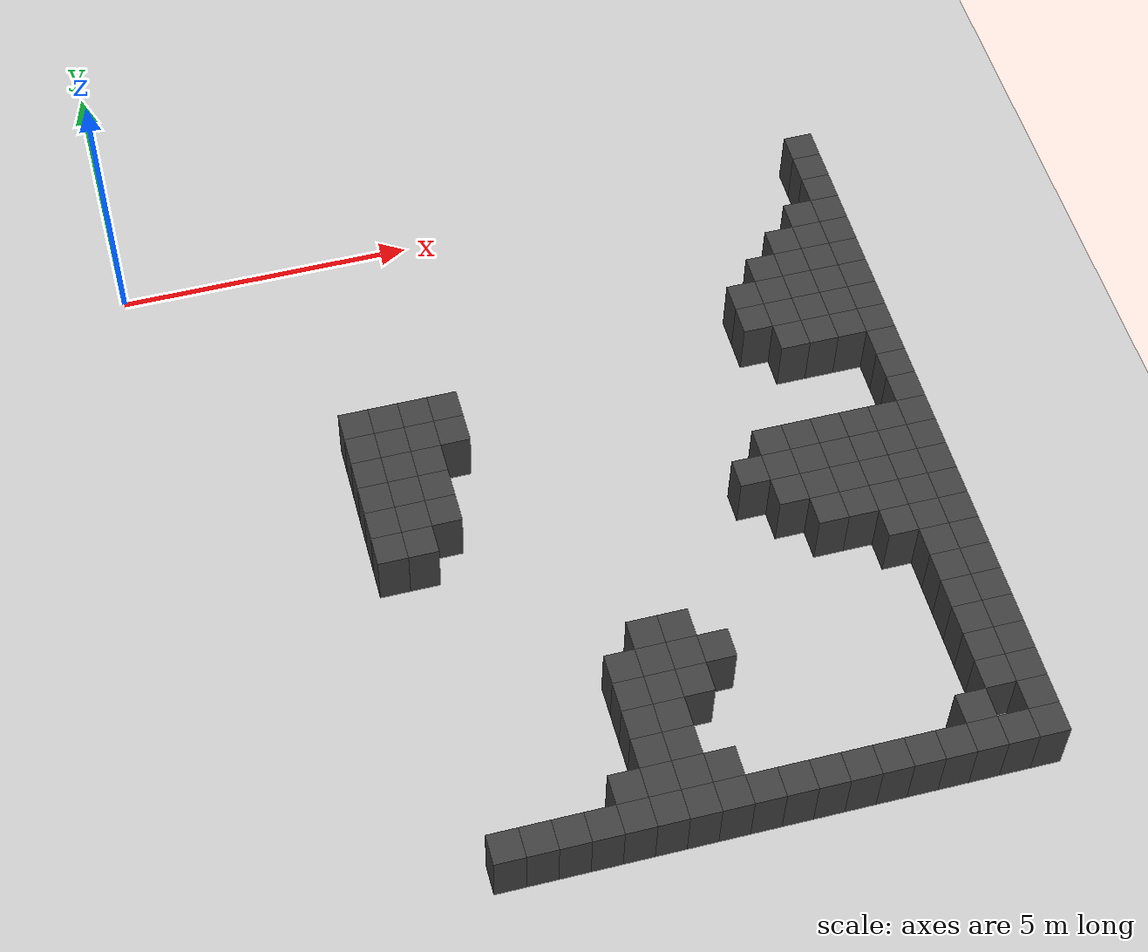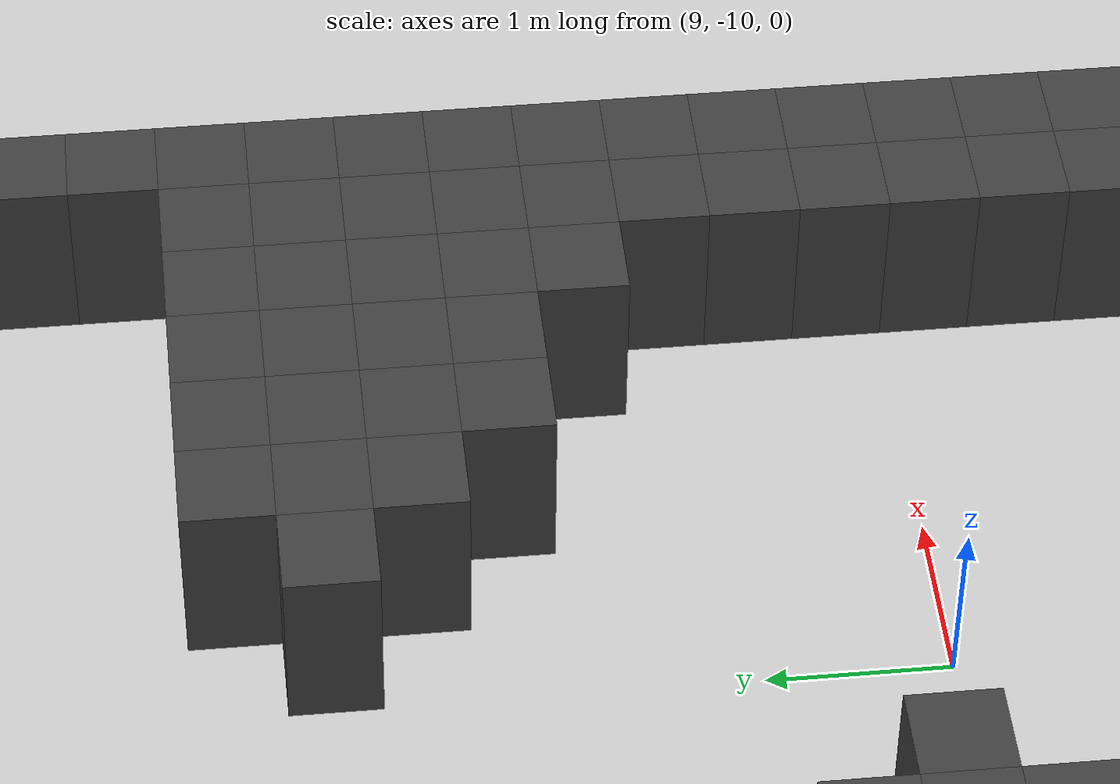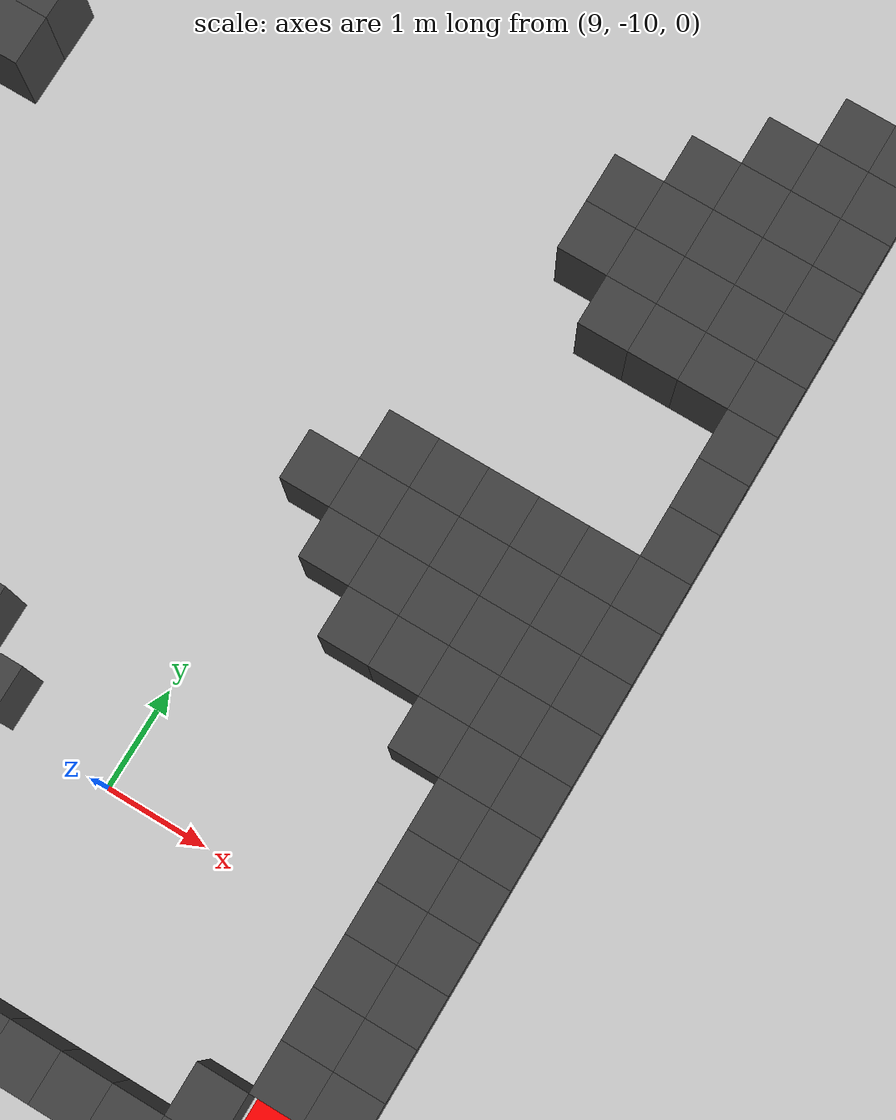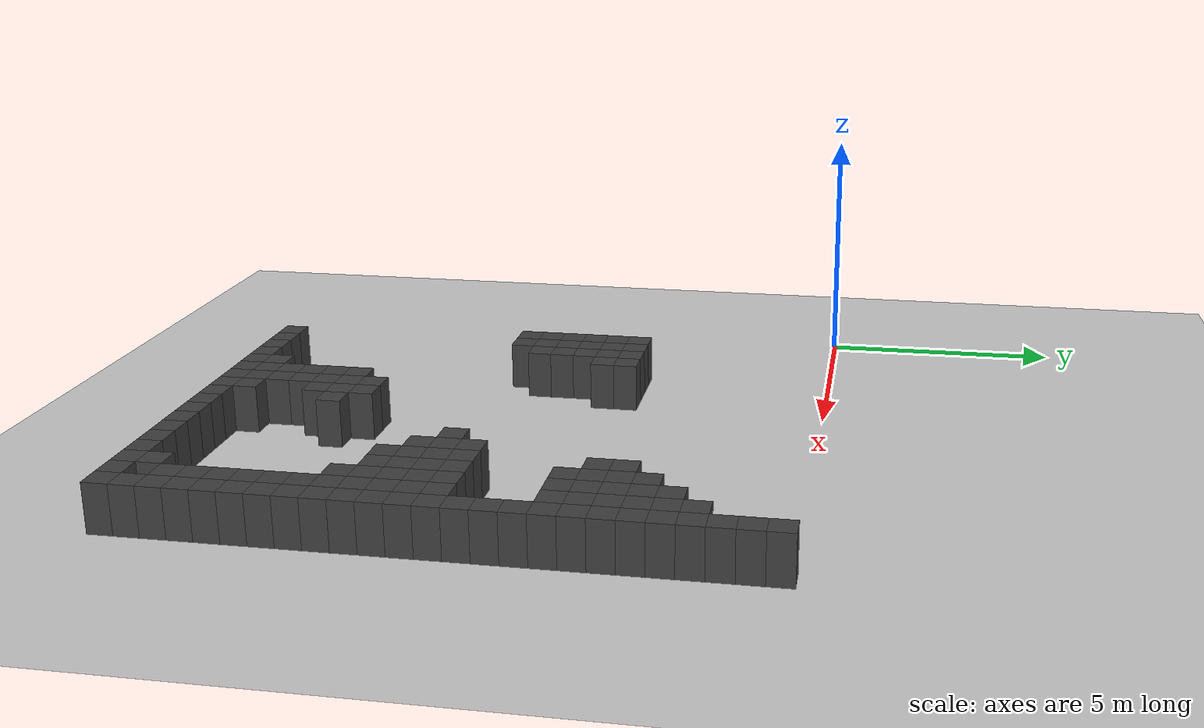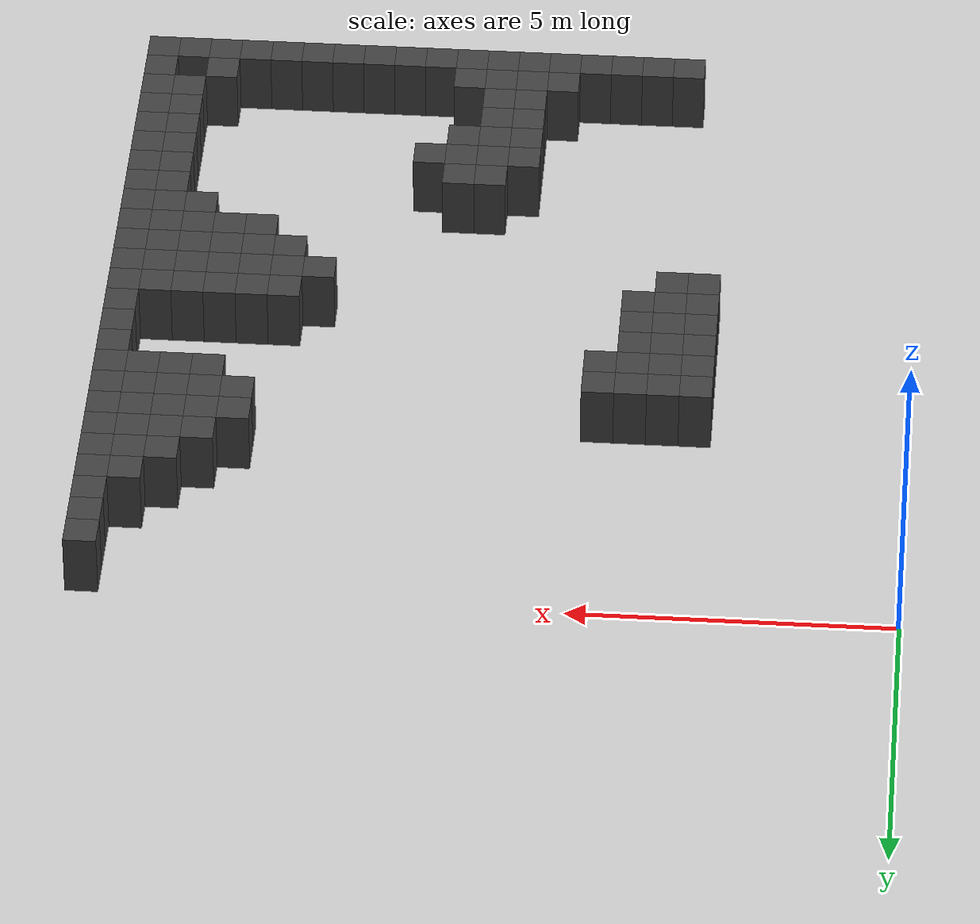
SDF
<sdf version="1.7">
 <world name="map_9082">
  <model name="ground_plane">
   <static>true</static>
   <link name="link">
    <collision name="collision">
     <geometry><plane><normal>0 0 1</normal><size>200 200</size></plane></geometry>
    </collision>
    <visual name="visual">
     <geometry><plane><normal>0 0 1</normal><size>200 200</size></plane></geometry>
     <material><ambient>0.8 0.8 0.8 1</ambient><diffuse>0.8 0.8 0.8 1</diffuse></material>
    </visual>
   </link>
  </model>
  <model name="maze_environment">
   <static>true</static>
   <link name="wall_455">
    <pose>12.250 -0.250 0.500 0 0 0</pose>
    <collision name="col"><geometry><box><size>0.5 0.5 1.0</size></box></geometry></collision>
    <visual name="vis">
     <geometry><box><size>0.5 0.5 1.0</size></box></geometry>
     <material><ambient>0.15 0.15 0.15 1</ambient><diffuse>0.25 0.25 0.25 1</diffuse></material>
    </visual>
   </link>
   <link name="wall_471">
    <pose>12.250 -0.750 0.500 0 0 0</pose>
    <collision name="col"><geometry><box><size>0.5 0.5 1.0</size></box></geometry></collision>
    <visual name="vis">
     <geometry><box><size>0.5 0.5 1.0</size></box></geometry>
     <material><ambient>0.15 0.15 0.15 1</ambient><diffuse>0.25 0.25 0.25 1</diffuse></material>
    </visual>
   </link>
   <link name="wall_489">
    <pose>12.250 -1.250 0.500 0 0 0</pose>
    <collision name="col"><geometry><box><size>0.5 0.5 1.0</size></box></geometry></collision>
    <visual name="vis">
     <geometry><box><size>0.5 0.5 1.0</size></box></geometry>
     <material><ambient>0.15 0.15 0.15 1</ambient><diffuse>0.25 0.25 0.25 1</diffuse></material>
    </visual>
   </link>
   <link name="wall_505">
    <pose>11.750 -1.750 0.500 0 0 0</pose>
    <collision name="col"><geometry><box><size>0.5 0.5 1.0</size></box></geometry></collision>
    <visual name="vis">
     <geometry><box><size>0.5 0.5 1.0</size></box></geometry>
     <material><ambient>0.15 0.15 0.15 1</ambient><diffuse>0.25 0.25 0.25 1</diffuse></material>
    </visual>
   </link>
   <link name="wall_506">
    <pose>12.250 -1.750 0.500 0 0 0</pose>
    <collision name="col"><geometry><box><size>0.5 0.5 1.0</size></box></geometry></collision>
    <visual name="vis">
     <geometry><box><size>0.5 0.5 1.0</size></box></geometry>
     <material><ambient>0.15 0.15 0.15 1</ambient><diffuse>0.25 0.25 0.25 1</diffuse></material>
    </visual>
   </link>
   <link name="wall_522">
    <pose>11.250 -2.250 0.500 0 0 0</pose>
    <collision name="col"><geometry><box><size>0.5 0.5 1.0</size></box></geometry></collision>
    <visual name="vis">
     <geometry><box><size>0.5 0.5 1.0</size></box></geometry>
     <material><ambient>0.15 0.15 0.15 1</ambient><diffuse>0.25 0.25 0.25 1</diffuse></material>
    </visual>
   </link>
   <link name="wall_523">
    <pose>11.750 -2.250 0.500 0 0 0</pose>
    <collision name="col"><geometry><box><size>0.5 0.5 1.0</size></box></geometry></collision>
    <visual name="vis">
     <geometry><box><size>0.5 0.5 1.0</size></box></geometry>
     <material><ambient>0.15 0.15 0.15 1</ambient><diffuse>0.25 0.25 0.25 1</diffuse></material>
    </visual>
   </link>
   <link name="wall_524">
    <pose>12.250 -2.250 0.500 0 0 0</pose>
    <collision name="col"><geometry><box><size>0.5 0.5 1.0</size></box></geometry></collision>
    <visual name="vis">
     <geometry><box><size>0.5 0.5 1.0</size></box></geometry>
     <material><ambient>0.15 0.15 0.15 1</ambient><diffuse>0.25 0.25 0.25 1</diffuse></material>
    </visual>
   </link>
   <link name="wall_541">
    <pose>10.750 -2.750 0.500 0 0 0</pose>
    <collision name="col"><geometry><box><size>0.5 0.5 1.0</size></box></geometry></collision>
    <visual name="vis">
     <geometry><box><size>0.5 0.5 1.0</size></box></geometry>
     <material><ambient>0.15 0.15 0.15 1</ambient><diffuse>0.25 0.25 0.25 1</diffuse></material>
    </visual>
   </link>
   <link name="wall_542">
    <pose>11.250 -2.750 0.500 0 0 0</pose>
    <collision name="col"><geometry><box><size>0.5 0.5 1.0</size></box></geometry></collision>
    <visual name="vis">
     <geometry><box><size>0.5 0.5 1.0</size></box></geometry>
     <material><ambient>0.15 0.15 0.15 1</ambient><diffuse>0.25 0.25 0.25 1</diffuse></material>
    </visual>
   </link>
   <link name="wall_543">
    <pose>11.750 -2.750 0.500 0 0 0</pose>
    <collision name="col"><geometry><box><size>0.5 0.5 1.0</size></box></geometry></collision>
    <visual name="vis">
     <geometry><box><size>0.5 0.5 1.0</size></box></geometry>
     <material><ambient>0.15 0.15 0.15 1</ambient><diffuse>0.25 0.25 0.25 1</diffuse></material>
    </visual>
   </link>
   <link name="wall_544">
    <pose>12.250 -2.750 0.500 0 0 0</pose>
    <collision name="col"><geometry><box><size>0.5 0.5 1.0</size></box></geometry></collision>
    <visual name="vis">
     <geometry><box><size>0.5 0.5 1.0</size></box></geometry>
     <material><ambient>0.15 0.15 0.15 1</ambient><diffuse>0.25 0.25 0.25 1</diffuse></material>
    </visual>
   </link>
   <link name="wall_563">
    <pose>10.250 -3.250 0.500 0 0 0</pose>
    <collision name="col"><geometry><box><size>0.5 0.5 1.0</size></box></geometry></collision>
    <visual name="vis">
     <geometry><box><size>0.5 0.5 1.0</size></box></geometry>
     <material><ambient>0.15 0.15 0.15 1</ambient><diffuse>0.25 0.25 0.25 1</diffuse></material>
    </visual>
   </link>
   <link name="wall_564">
    <pose>10.750 -3.250 0.500 0 0 0</pose>
    <collision name="col"><geometry><box><size>0.5 0.5 1.0</size></box></geometry></collision>
    <visual name="vis">
     <geometry><box><size>0.5 0.5 1.0</size></box></geometry>
     <material><ambient>0.15 0.15 0.15 1</ambient><diffuse>0.25 0.25 0.25 1</diffuse></material>
    </visual>
   </link>
   <link name="wall_565">
    <pose>11.250 -3.250 0.500 0 0 0</pose>
    <collision name="col"><geometry><box><size>0.5 0.5 1.0</size></box></geometry></collision>
    <visual name="vis">
     <geometry><box><size>0.5 0.5 1.0</size></box></geometry>
     <material><ambient>0.15 0.15 0.15 1</ambient><diffuse>0.25 0.25 0.25 1</diffuse></material>
    </visual>
   </link>
   <link name="wall_566">
    <pose>11.750 -3.250 0.500 0 0 0</pose>
    <collision name="col"><geometry><box><size>0.5 0.5 1.0</size></box></geometry></collision>
    <visual name="vis">
     <geometry><box><size>0.5 0.5 1.0</size></box></geometry>
     <material><ambient>0.15 0.15 0.15 1</ambient><diffuse>0.25 0.25 0.25 1</diffuse></material>
    </visual>
   </link>
   <link name="wall_567">
    <pose>12.250 -3.250 0.500 0 0 0</pose>
    <collision name="col"><geometry><box><size>0.5 0.5 1.0</size></box></geometry></collision>
    <visual name="vis">
     <geometry><box><size>0.5 0.5 1.0</size></box></geometry>
     <material><ambient>0.15 0.15 0.15 1</ambient><diffuse>0.25 0.25 0.25 1</diffuse></material>
    </visual>
   </link>
   <link name="wall_581">
    <pose>10.250 -3.750 0.500 0 0 0</pose>
    <collision name="col"><geometry><box><size>0.5 0.5 1.0</size></box></geometry></collision>
    <visual name="vis">
     <geometry><box><size>0.5 0.5 1.0</size></box></geometry>
     <material><ambient>0.15 0.15 0.15 1</ambient><diffuse>0.25 0.25 0.25 1</diffuse></material>
    </visual>
   </link>
   <link name="wall_582">
    <pose>10.750 -3.750 0.500 0 0 0</pose>
    <collision name="col"><geometry><box><size>0.5 0.5 1.0</size></box></geometry></collision>
    <visual name="vis">
     <geometry><box><size>0.5 0.5 1.0</size></box></geometry>
     <material><ambient>0.15 0.15 0.15 1</ambient><diffuse>0.25 0.25 0.25 1</diffuse></material>
    </visual>
   </link>
   <link name="wall_583">
    <pose>11.250 -3.750 0.500 0 0 0</pose>
    <collision name="col"><geometry><box><size>0.5 0.5 1.0</size></box></geometry></collision>
    <visual name="vis">
     <geometry><box><size>0.5 0.5 1.0</size></box></geometry>
     <material><ambient>0.15 0.15 0.15 1</ambient><diffuse>0.25 0.25 0.25 1</diffuse></material>
    </visual>
   </link>
   <link name="wall_584">
    <pose>11.750 -3.750 0.500 0 0 0</pose>
    <collision name="col"><geometry><box><size>0.5 0.5 1.0</size></box></geometry></collision>
    <visual name="vis">
     <geometry><box><size>0.5 0.5 1.0</size></box></geometry>
     <material><ambient>0.15 0.15 0.15 1</ambient><diffuse>0.25 0.25 0.25 1</diffuse></material>
    </visual>
   </link>
   <link name="wall_585">
    <pose>12.250 -3.750 0.500 0 0 0</pose>
    <collision name="col"><geometry><box><size>0.5 0.5 1.0</size></box></geometry></collision>
    <visual name="vis">
     <geometry><box><size>0.5 0.5 1.0</size></box></geometry>
     <material><ambient>0.15 0.15 0.15 1</ambient><diffuse>0.25 0.25 0.25 1</diffuse></material>
    </visual>
   </link>
   <link name="wall_599">
    <pose>3.250 -4.250 0.500 0 0 0</pose>
    <collision name="col"><geometry><box><size>0.5 0.5 1.0</size></box></geometry></collision>
    <visual name="vis">
     <geometry><box><size>0.5 0.5 1.0</size></box></geometry>
     <material><ambient>0.15 0.15 0.15 1</ambient><diffuse>0.25 0.25 0.25 1</diffuse></material>
    </visual>
   </link>
   <link name="wall_600">
    <pose>3.750 -4.250 0.500 0 0 0</pose>
    <collision name="col"><geometry><box><size>0.5 0.5 1.0</size></box></geometry></collision>
    <visual name="vis">
     <geometry><box><size>0.5 0.5 1.0</size></box></geometry>
     <material><ambient>0.15 0.15 0.15 1</ambient><diffuse>0.25 0.25 0.25 1</diffuse></material>
    </visual>
   </link>
   <link name="wall_601">
    <pose>4.250 -4.250 0.500 0 0 0</pose>
    <collision name="col"><geometry><box><size>0.5 0.5 1.0</size></box></geometry></collision>
    <visual name="vis">
     <geometry><box><size>0.5 0.5 1.0</size></box></geometry>
     <material><ambient>0.15 0.15 0.15 1</ambient><diffuse>0.25 0.25 0.25 1</diffuse></material>
    </visual>
   </link>
   <link name="wall_602">
    <pose>4.750 -4.250 0.500 0 0 0</pose>
    <collision name="col"><geometry><box><size>0.5 0.5 1.0</size></box></geometry></collision>
    <visual name="vis">
     <geometry><box><size>0.5 0.5 1.0</size></box></geometry>
     <material><ambient>0.15 0.15 0.15 1</ambient><diffuse>0.25 0.25 0.25 1</diffuse></material>
    </visual>
   </link>
   <link name="wall_603">
    <pose>10.750 -4.250 0.500 0 0 0</pose>
    <collision name="col"><geometry><box><size>0.5 0.5 1.0</size></box></geometry></collision>
    <visual name="vis">
     <geometry><box><size>0.5 0.5 1.0</size></box></geometry>
     <material><ambient>0.15 0.15 0.15 1</ambient><diffuse>0.25 0.25 0.25 1</diffuse></material>
    </visual>
   </link>
   <link name="wall_604">
    <pose>11.250 -4.250 0.500 0 0 0</pose>
    <collision name="col"><geometry><box><size>0.5 0.5 1.0</size></box></geometry></collision>
    <visual name="vis">
     <geometry><box><size>0.5 0.5 1.0</size></box></geometry>
     <material><ambient>0.15 0.15 0.15 1</ambient><diffuse>0.25 0.25 0.25 1</diffuse></material>
    </visual>
   </link>
   <link name="wall_605">
    <pose>11.750 -4.250 0.500 0 0 0</pose>
    <collision name="col"><geometry><box><size>0.5 0.5 1.0</size></box></geometry></collision>
    <visual name="vis">
     <geometry><box><size>0.5 0.5 1.0</size></box></geometry>
     <material><ambient>0.15 0.15 0.15 1</ambient><diffuse>0.25 0.25 0.25 1</diffuse></material>
    </visual>
   </link>
   <link name="wall_606">
    <pose>12.250 -4.250 0.500 0 0 0</pose>
    <collision name="col"><geometry><box><size>0.5 0.5 1.0</size></box></geometry></collision>
    <visual name="vis">
     <geometry><box><size>0.5 0.5 1.0</size></box></geometry>
     <material><ambient>0.15 0.15 0.15 1</ambient><diffuse>0.25 0.25 0.25 1</diffuse></material>
    </visual>
   </link>
   <link name="wall_617">
    <pose>3.250 -4.750 0.500 0 0 0</pose>
    <collision name="col"><geometry><box><size>0.5 0.5 1.0</size></box></geometry></collision>
    <visual name="vis">
     <geometry><box><size>0.5 0.5 1.0</size></box></geometry>
     <material><ambient>0.15 0.15 0.15 1</ambient><diffuse>0.25 0.25 0.25 1</diffuse></material>
    </visual>
   </link>
   <link name="wall_618">
    <pose>3.750 -4.750 0.500 0 0 0</pose>
    <collision name="col"><geometry><box><size>0.5 0.5 1.0</size></box></geometry></collision>
    <visual name="vis">
     <geometry><box><size>0.5 0.5 1.0</size></box></geometry>
     <material><ambient>0.15 0.15 0.15 1</ambient><diffuse>0.25 0.25 0.25 1</diffuse></material>
    </visual>
   </link>
   <link name="wall_619">
    <pose>4.250 -4.750 0.500 0 0 0</pose>
    <collision name="col"><geometry><box><size>0.5 0.5 1.0</size></box></geometry></collision>
    <visual name="vis">
     <geometry><box><size>0.5 0.5 1.0</size></box></geometry>
     <material><ambient>0.15 0.15 0.15 1</ambient><diffuse>0.25 0.25 0.25 1</diffuse></material>
    </visual>
   </link>
   <link name="wall_620">
    <pose>4.750 -4.750 0.500 0 0 0</pose>
    <collision name="col"><geometry><box><size>0.5 0.5 1.0</size></box></geometry></collision>
    <visual name="vis">
     <geometry><box><size>0.5 0.5 1.0</size></box></geometry>
     <material><ambient>0.15 0.15 0.15 1</ambient><diffuse>0.25 0.25 0.25 1</diffuse></material>
    </visual>
   </link>
   <link name="wall_621">
    <pose>12.250 -4.750 0.500 0 0 0</pose>
    <collision name="col"><geometry><box><size>0.5 0.5 1.0</size></box></geometry></collision>
    <visual name="vis">
     <geometry><box><size>0.5 0.5 1.0</size></box></geometry>
     <material><ambient>0.15 0.15 0.15 1</ambient><diffuse>0.25 0.25 0.25 1</diffuse></material>
    </visual>
   </link>
   <link name="wall_628">
    <pose>3.250 -5.250 0.500 0 0 0</pose>
    <collision name="col"><geometry><box><size>0.5 0.5 1.0</size></box></geometry></collision>
    <visual name="vis">
     <geometry><box><size>0.5 0.5 1.0</size></box></geometry>
     <material><ambient>0.15 0.15 0.15 1</ambient><diffuse>0.25 0.25 0.25 1</diffuse></material>
    </visual>
   </link>
   <link name="wall_629">
    <pose>3.750 -5.250 0.500 0 0 0</pose>
    <collision name="col"><geometry><box><size>0.5 0.5 1.0</size></box></geometry></collision>
    <visual name="vis">
     <geometry><box><size>0.5 0.5 1.0</size></box></geometry>
     <material><ambient>0.15 0.15 0.15 1</ambient><diffuse>0.25 0.25 0.25 1</diffuse></material>
    </visual>
   </link>
   <link name="wall_630">
    <pose>4.250 -5.250 0.500 0 0 0</pose>
    <collision name="col"><geometry><box><size>0.5 0.5 1.0</size></box></geometry></collision>
    <visual name="vis">
     <geometry><box><size>0.5 0.5 1.0</size></box></geometry>
     <material><ambient>0.15 0.15 0.15 1</ambient><diffuse>0.25 0.25 0.25 1</diffuse></material>
    </visual>
   </link>
   <link name="wall_631">
    <pose>12.250 -5.250 0.500 0 0 0</pose>
    <collision name="col"><geometry><box><size>0.5 0.5 1.0</size></box></geometry></collision>
    <visual name="vis">
     <geometry><box><size>0.5 0.5 1.0</size></box></geometry>
     <material><ambient>0.15 0.15 0.15 1</ambient><diffuse>0.25 0.25 0.25 1</diffuse></material>
    </visual>
   </link>
   <link name="wall_638">
    <pose>3.250 -5.750 0.500 0 0 0</pose>
    <collision name="col"><geometry><box><size>0.5 0.5 1.0</size></box></geometry></collision>
    <visual name="vis">
     <geometry><box><size>0.5 0.5 1.0</size></box></geometry>
     <material><ambient>0.15 0.15 0.15 1</ambient><diffuse>0.25 0.25 0.25 1</diffuse></material>
    </visual>
   </link>
   <link name="wall_639">
    <pose>3.750 -5.750 0.500 0 0 0</pose>
    <collision name="col"><geometry><box><size>0.5 0.5 1.0</size></box></geometry></collision>
    <visual name="vis">
     <geometry><box><size>0.5 0.5 1.0</size></box></geometry>
     <material><ambient>0.15 0.15 0.15 1</ambient><diffuse>0.25 0.25 0.25 1</diffuse></material>
    </visual>
   </link>
   <link name="wall_640">
    <pose>4.250 -5.750 0.500 0 0 0</pose>
    <collision name="col"><geometry><box><size>0.5 0.5 1.0</size></box></geometry></collision>
    <visual name="vis">
     <geometry><box><size>0.5 0.5 1.0</size></box></geometry>
     <material><ambient>0.15 0.15 0.15 1</ambient><diffuse>0.25 0.25 0.25 1</diffuse></material>
    </visual>
   </link>
   <link name="wall_641">
    <pose>12.250 -5.750 0.500 0 0 0</pose>
    <collision name="col"><geometry><box><size>0.5 0.5 1.0</size></box></geometry></collision>
    <visual name="vis">
     <geometry><box><size>0.5 0.5 1.0</size></box></geometry>
     <material><ambient>0.15 0.15 0.15 1</ambient><diffuse>0.25 0.25 0.25 1</diffuse></material>
    </visual>
   </link>
   <link name="wall_646">
    <pose>3.250 -6.250 0.500 0 0 0</pose>
    <collision name="col"><geometry><box><size>0.5 0.5 1.0</size></box></geometry></collision>
    <visual name="vis">
     <geometry><box><size>0.5 0.5 1.0</size></box></geometry>
     <material><ambient>0.15 0.15 0.15 1</ambient><diffuse>0.25 0.25 0.25 1</diffuse></material>
    </visual>
   </link>
   <link name="wall_647">
    <pose>3.750 -6.250 0.500 0 0 0</pose>
    <collision name="col"><geometry><box><size>0.5 0.5 1.0</size></box></geometry></collision>
    <visual name="vis">
     <geometry><box><size>0.5 0.5 1.0</size></box></geometry>
     <material><ambient>0.15 0.15 0.15 1</ambient><diffuse>0.25 0.25 0.25 1</diffuse></material>
    </visual>
   </link>
   <link name="wall_648">
    <pose>4.250 -6.250 0.500 0 0 0</pose>
    <collision name="col"><geometry><box><size>0.5 0.5 1.0</size></box></geometry></collision>
    <visual name="vis">
     <geometry><box><size>0.5 0.5 1.0</size></box></geometry>
     <material><ambient>0.15 0.15 0.15 1</ambient><diffuse>0.25 0.25 0.25 1</diffuse></material>
    </visual>
   </link>
   <link name="wall_649">
    <pose>9.750 -6.250 0.500 0 0 0</pose>
    <collision name="col"><geometry><box><size>0.5 0.5 1.0</size></box></geometry></collision>
    <visual name="vis">
     <geometry><box><size>0.5 0.5 1.0</size></box></geometry>
     <material><ambient>0.15 0.15 0.15 1</ambient><diffuse>0.25 0.25 0.25 1</diffuse></material>
    </visual>
   </link>
   <link name="wall_650">
    <pose>10.250 -6.250 0.500 0 0 0</pose>
    <collision name="col"><geometry><box><size>0.5 0.5 1.0</size></box></geometry></collision>
    <visual name="vis">
     <geometry><box><size>0.5 0.5 1.0</size></box></geometry>
     <material><ambient>0.15 0.15 0.15 1</ambient><diffuse>0.25 0.25 0.25 1</diffuse></material>
    </visual>
   </link>
   <link name="wall_651">
    <pose>10.750 -6.250 0.500 0 0 0</pose>
    <collision name="col"><geometry><box><size>0.5 0.5 1.0</size></box></geometry></collision>
    <visual name="vis">
     <geometry><box><size>0.5 0.5 1.0</size></box></geometry>
     <material><ambient>0.15 0.15 0.15 1</ambient><diffuse>0.25 0.25 0.25 1</diffuse></material>
    </visual>
   </link>
   <link name="wall_652">
    <pose>11.250 -6.250 0.500 0 0 0</pose>
    <collision name="col"><geometry><box><size>0.5 0.5 1.0</size></box></geometry></collision>
    <visual name="vis">
     <geometry><box><size>0.5 0.5 1.0</size></box></geometry>
     <material><ambient>0.15 0.15 0.15 1</ambient><diffuse>0.25 0.25 0.25 1</diffuse></material>
    </visual>
   </link>
   <link name="wall_653">
    <pose>11.750 -6.250 0.500 0 0 0</pose>
    <collision name="col"><geometry><box><size>0.5 0.5 1.0</size></box></geometry></collision>
    <visual name="vis">
     <geometry><box><size>0.5 0.5 1.0</size></box></geometry>
     <material><ambient>0.15 0.15 0.15 1</ambient><diffuse>0.25 0.25 0.25 1</diffuse></material>
    </visual>
   </link>
   <link name="wall_654">
    <pose>12.250 -6.250 0.500 0 0 0</pose>
    <collision name="col"><geometry><box><size>0.5 0.5 1.0</size></box></geometry></collision>
    <visual name="vis">
     <geometry><box><size>0.5 0.5 1.0</size></box></geometry>
     <material><ambient>0.15 0.15 0.15 1</ambient><diffuse>0.25 0.25 0.25 1</diffuse></material>
    </visual>
   </link>
   <link name="wall_660">
    <pose>3.250 -6.750 0.500 0 0 0</pose>
    <collision name="col"><geometry><box><size>0.5 0.5 1.0</size></box></geometry></collision>
    <visual name="vis">
     <geometry><box><size>0.5 0.5 1.0</size></box></geometry>
     <material><ambient>0.15 0.15 0.15 1</ambient><diffuse>0.25 0.25 0.25 1</diffuse></material>
    </visual>
   </link>
   <link name="wall_661">
    <pose>3.750 -6.750 0.500 0 0 0</pose>
    <collision name="col"><geometry><box><size>0.5 0.5 1.0</size></box></geometry></collision>
    <visual name="vis">
     <geometry><box><size>0.5 0.5 1.0</size></box></geometry>
     <material><ambient>0.15 0.15 0.15 1</ambient><diffuse>0.25 0.25 0.25 1</diffuse></material>
    </visual>
   </link>
   <link name="wall_662">
    <pose>9.250 -6.750 0.500 0 0 0</pose>
    <collision name="col"><geometry><box><size>0.5 0.5 1.0</size></box></geometry></collision>
    <visual name="vis">
     <geometry><box><size>0.5 0.5 1.0</size></box></geometry>
     <material><ambient>0.15 0.15 0.15 1</ambient><diffuse>0.25 0.25 0.25 1</diffuse></material>
    </visual>
   </link>
   <link name="wall_663">
    <pose>9.750 -6.750 0.500 0 0 0</pose>
    <collision name="col"><geometry><box><size>0.5 0.5 1.0</size></box></geometry></collision>
    <visual name="vis">
     <geometry><box><size>0.5 0.5 1.0</size></box></geometry>
     <material><ambient>0.15 0.15 0.15 1</ambient><diffuse>0.25 0.25 0.25 1</diffuse></material>
    </visual>
   </link>
   <link name="wall_664">
    <pose>10.250 -6.750 0.500 0 0 0</pose>
    <collision name="col"><geometry><box><size>0.5 0.5 1.0</size></box></geometry></collision>
    <visual name="vis">
     <geometry><box><size>0.5 0.5 1.0</size></box></geometry>
     <material><ambient>0.15 0.15 0.15 1</ambient><diffuse>0.25 0.25 0.25 1</diffuse></material>
    </visual>
   </link>
   <link name="wall_665">
    <pose>10.750 -6.750 0.500 0 0 0</pose>
    <collision name="col"><geometry><box><size>0.5 0.5 1.0</size></box></geometry></collision>
    <visual name="vis">
     <geometry><box><size>0.5 0.5 1.0</size></box></geometry>
     <material><ambient>0.15 0.15 0.15 1</ambient><diffuse>0.25 0.25 0.25 1</diffuse></material>
    </visual>
   </link>
   <link name="wall_666">
    <pose>11.250 -6.750 0.500 0 0 0</pose>
    <collision name="col"><geometry><box><size>0.5 0.5 1.0</size></box></geometry></collision>
    <visual name="vis">
     <geometry><box><size>0.5 0.5 1.0</size></box></geometry>
     <material><ambient>0.15 0.15 0.15 1</ambient><diffuse>0.25 0.25 0.25 1</diffuse></material>
    </visual>
   </link>
   <link name="wall_667">
    <pose>11.750 -6.750 0.500 0 0 0</pose>
    <collision name="col"><geometry><box><size>0.5 0.5 1.0</size></box></geometry></collision>
    <visual name="vis">
     <geometry><box><size>0.5 0.5 1.0</size></box></geometry>
     <material><ambient>0.15 0.15 0.15 1</ambient><diffuse>0.25 0.25 0.25 1</diffuse></material>
    </visual>
   </link>
   <link name="wall_668">
    <pose>12.250 -6.750 0.500 0 0 0</pose>
    <collision name="col"><geometry><box><size>0.5 0.5 1.0</size></box></geometry></collision>
    <visual name="vis">
     <geometry><box><size>0.5 0.5 1.0</size></box></geometry>
     <material><ambient>0.15 0.15 0.15 1</ambient><diffuse>0.25 0.25 0.25 1</diffuse></material>
    </visual>
   </link>
   <link name="wall_674">
    <pose>9.750 -7.250 0.500 0 0 0</pose>
    <collision name="col"><geometry><box><size>0.5 0.5 1.0</size></box></geometry></collision>
    <visual name="vis">
     <geometry><box><size>0.5 0.5 1.0</size></box></geometry>
     <material><ambient>0.15 0.15 0.15 1</ambient><diffuse>0.25 0.25 0.25 1</diffuse></material>
    </visual>
   </link>
   <link name="wall_675">
    <pose>10.250 -7.250 0.500 0 0 0</pose>
    <collision name="col"><geometry><box><size>0.5 0.5 1.0</size></box></geometry></collision>
    <visual name="vis">
     <geometry><box><size>0.5 0.5 1.0</size></box></geometry>
     <material><ambient>0.15 0.15 0.15 1</ambient><diffuse>0.25 0.25 0.25 1</diffuse></material>
    </visual>
   </link>
   <link name="wall_676">
    <pose>10.750 -7.250 0.500 0 0 0</pose>
    <collision name="col"><geometry><box><size>0.5 0.5 1.0</size></box></geometry></collision>
    <visual name="vis">
     <geometry><box><size>0.5 0.5 1.0</size></box></geometry>
     <material><ambient>0.15 0.15 0.15 1</ambient><diffuse>0.25 0.25 0.25 1</diffuse></material>
    </visual>
   </link>
   <link name="wall_677">
    <pose>11.250 -7.250 0.500 0 0 0</pose>
    <collision name="col"><geometry><box><size>0.5 0.5 1.0</size></box></geometry></collision>
    <visual name="vis">
     <geometry><box><size>0.5 0.5 1.0</size></box></geometry>
     <material><ambient>0.15 0.15 0.15 1</ambient><diffuse>0.25 0.25 0.25 1</diffuse></material>
    </visual>
   </link>
   <link name="wall_678">
    <pose>11.750 -7.250 0.500 0 0 0</pose>
    <collision name="col"><geometry><box><size>0.5 0.5 1.0</size></box></geometry></collision>
    <visual name="vis">
     <geometry><box><size>0.5 0.5 1.0</size></box></geometry>
     <material><ambient>0.15 0.15 0.15 1</ambient><diffuse>0.25 0.25 0.25 1</diffuse></material>
    </visual>
   </link>
   <link name="wall_679">
    <pose>12.250 -7.250 0.500 0 0 0</pose>
    <collision name="col"><geometry><box><size>0.5 0.5 1.0</size></box></geometry></collision>
    <visual name="vis">
     <geometry><box><size>0.5 0.5 1.0</size></box></geometry>
     <material><ambient>0.15 0.15 0.15 1</ambient><diffuse>0.25 0.25 0.25 1</diffuse></material>
    </visual>
   </link>
   <link name="wall_685">
    <pose>10.250 -7.750 0.500 0 0 0</pose>
    <collision name="col"><geometry><box><size>0.5 0.5 1.0</size></box></geometry></collision>
    <visual name="vis">
     <geometry><box><size>0.5 0.5 1.0</size></box></geometry>
     <material><ambient>0.15 0.15 0.15 1</ambient><diffuse>0.25 0.25 0.25 1</diffuse></material>
    </visual>
   </link>
   <link name="wall_686">
    <pose>10.750 -7.750 0.500 0 0 0</pose>
    <collision name="col"><geometry><box><size>0.5 0.5 1.0</size></box></geometry></collision>
    <visual name="vis">
     <geometry><box><size>0.5 0.5 1.0</size></box></geometry>
     <material><ambient>0.15 0.15 0.15 1</ambient><diffuse>0.25 0.25 0.25 1</diffuse></material>
    </visual>
   </link>
   <link name="wall_687">
    <pose>11.250 -7.750 0.500 0 0 0</pose>
    <collision name="col"><geometry><box><size>0.5 0.5 1.0</size></box></geometry></collision>
    <visual name="vis">
     <geometry><box><size>0.5 0.5 1.0</size></box></geometry>
     <material><ambient>0.15 0.15 0.15 1</ambient><diffuse>0.25 0.25 0.25 1</diffuse></material>
    </visual>
   </link>
   <link name="wall_688">
    <pose>11.750 -7.750 0.500 0 0 0</pose>
    <collision name="col"><geometry><box><size>0.5 0.5 1.0</size></box></geometry></collision>
    <visual name="vis">
     <geometry><box><size>0.5 0.5 1.0</size></box></geometry>
     <material><ambient>0.15 0.15 0.15 1</ambient><diffuse>0.25 0.25 0.25 1</diffuse></material>
    </visual>
   </link>
   <link name="wall_689">
    <pose>12.250 -7.750 0.500 0 0 0</pose>
    <collision name="col"><geometry><box><size>0.5 0.5 1.0</size></box></geometry></collision>
    <visual name="vis">
     <geometry><box><size>0.5 0.5 1.0</size></box></geometry>
     <material><ambient>0.15 0.15 0.15 1</ambient><diffuse>0.25 0.25 0.25 1</diffuse></material>
    </visual>
   </link>
   <link name="wall_701">
    <pose>11.250 -8.250 0.500 0 0 0</pose>
    <collision name="col"><geometry><box><size>0.5 0.5 1.0</size></box></geometry></collision>
    <visual name="vis">
     <geometry><box><size>0.5 0.5 1.0</size></box></geometry>
     <material><ambient>0.15 0.15 0.15 1</ambient><diffuse>0.25 0.25 0.25 1</diffuse></material>
    </visual>
   </link>
   <link name="wall_702">
    <pose>11.750 -8.250 0.500 0 0 0</pose>
    <collision name="col"><geometry><box><size>0.5 0.5 1.0</size></box></geometry></collision>
    <visual name="vis">
     <geometry><box><size>0.5 0.5 1.0</size></box></geometry>
     <material><ambient>0.15 0.15 0.15 1</ambient><diffuse>0.25 0.25 0.25 1</diffuse></material>
    </visual>
   </link>
   <link name="wall_703">
    <pose>12.250 -8.250 0.500 0 0 0</pose>
    <collision name="col"><geometry><box><size>0.5 0.5 1.0</size></box></geometry></collision>
    <visual name="vis">
     <geometry><box><size>0.5 0.5 1.0</size></box></geometry>
     <material><ambient>0.15 0.15 0.15 1</ambient><diffuse>0.25 0.25 0.25 1</diffuse></material>
    </visual>
   </link>
   <link name="wall_716">
    <pose>11.750 -8.750 0.500 0 0 0</pose>
    <collision name="col"><geometry><box><size>0.5 0.5 1.0</size></box></geometry></collision>
    <visual name="vis">
     <geometry><box><size>0.5 0.5 1.0</size></box></geometry>
     <material><ambient>0.15 0.15 0.15 1</ambient><diffuse>0.25 0.25 0.25 1</diffuse></material>
    </visual>
   </link>
   <link name="wall_717">
    <pose>12.250 -8.750 0.500 0 0 0</pose>
    <collision name="col"><geometry><box><size>0.5 0.5 1.0</size></box></geometry></collision>
    <visual name="vis">
     <geometry><box><size>0.5 0.5 1.0</size></box></geometry>
     <material><ambient>0.15 0.15 0.15 1</ambient><diffuse>0.25 0.25 0.25 1</diffuse></material>
    </visual>
   </link>
   <link name="wall_726">
    <pose>6.750 -9.250 0.500 0 0 0</pose>
    <collision name="col"><geometry><box><size>0.5 0.5 1.0</size></box></geometry></collision>
    <visual name="vis">
     <geometry><box><size>0.5 0.5 1.0</size></box></geometry>
     <material><ambient>0.15 0.15 0.15 1</ambient><diffuse>0.25 0.25 0.25 1</diffuse></material>
    </visual>
   </link>
   <link name="wall_727">
    <pose>7.250 -9.250 0.500 0 0 0</pose>
    <collision name="col"><geometry><box><size>0.5 0.5 1.0</size></box></geometry></collision>
    <visual name="vis">
     <geometry><box><size>0.5 0.5 1.0</size></box></geometry>
     <material><ambient>0.15 0.15 0.15 1</ambient><diffuse>0.25 0.25 0.25 1</diffuse></material>
    </visual>
   </link>
   <link name="wall_728">
    <pose>11.750 -9.250 0.500 0 0 0</pose>
    <collision name="col"><geometry><box><size>0.5 0.5 1.0</size></box></geometry></collision>
    <visual name="vis">
     <geometry><box><size>0.5 0.5 1.0</size></box></geometry>
     <material><ambient>0.15 0.15 0.15 1</ambient><diffuse>0.25 0.25 0.25 1</diffuse></material>
    </visual>
   </link>
   <link name="wall_729">
    <pose>12.250 -9.250 0.500 0 0 0</pose>
    <collision name="col"><geometry><box><size>0.5 0.5 1.0</size></box></geometry></collision>
    <visual name="vis">
     <geometry><box><size>0.5 0.5 1.0</size></box></geometry>
     <material><ambient>0.15 0.15 0.15 1</ambient><diffuse>0.25 0.25 0.25 1</diffuse></material>
    </visual>
   </link>
   <link name="wall_742">
    <pose>6.250 -9.750 0.500 0 0 0</pose>
    <collision name="col"><geometry><box><size>0.5 0.5 1.0</size></box></geometry></collision>
    <visual name="vis">
     <geometry><box><size>0.5 0.5 1.0</size></box></geometry>
     <material><ambient>0.15 0.15 0.15 1</ambient><diffuse>0.25 0.25 0.25 1</diffuse></material>
    </visual>
   </link>
   <link name="wall_743">
    <pose>6.750 -9.750 0.500 0 0 0</pose>
    <collision name="col"><geometry><box><size>0.5 0.5 1.0</size></box></geometry></collision>
    <visual name="vis">
     <geometry><box><size>0.5 0.5 1.0</size></box></geometry>
     <material><ambient>0.15 0.15 0.15 1</ambient><diffuse>0.25 0.25 0.25 1</diffuse></material>
    </visual>
   </link>
   <link name="wall_744">
    <pose>7.250 -9.750 0.500 0 0 0</pose>
    <collision name="col"><geometry><box><size>0.5 0.5 1.0</size></box></geometry></collision>
    <visual name="vis">
     <geometry><box><size>0.5 0.5 1.0</size></box></geometry>
     <material><ambient>0.15 0.15 0.15 1</ambient><diffuse>0.25 0.25 0.25 1</diffuse></material>
    </visual>
   </link>
   <link name="wall_745">
    <pose>7.750 -9.750 0.500 0 0 0</pose>
    <collision name="col"><geometry><box><size>0.5 0.5 1.0</size></box></geometry></collision>
    <visual name="vis">
     <geometry><box><size>0.5 0.5 1.0</size></box></geometry>
     <material><ambient>0.15 0.15 0.15 1</ambient><diffuse>0.25 0.25 0.25 1</diffuse></material>
    </visual>
   </link>
   <link name="wall_746">
    <pose>11.750 -9.750 0.500 0 0 0</pose>
    <collision name="col"><geometry><box><size>0.5 0.5 1.0</size></box></geometry></collision>
    <visual name="vis">
     <geometry><box><size>0.5 0.5 1.0</size></box></geometry>
     <material><ambient>0.15 0.15 0.15 1</ambient><diffuse>0.25 0.25 0.25 1</diffuse></material>
    </visual>
   </link>
   <link name="wall_747">
    <pose>12.250 -9.750 0.500 0 0 0</pose>
    <collision name="col"><geometry><box><size>0.5 0.5 1.0</size></box></geometry></collision>
    <visual name="vis">
     <geometry><box><size>0.5 0.5 1.0</size></box></geometry>
     <material><ambient>0.15 0.15 0.15 1</ambient><diffuse>0.25 0.25 0.25 1</diffuse></material>
    </visual>
   </link>
   <link name="wall_761">
    <pose>6.250 -10.250 0.500 0 0 0</pose>
    <collision name="col"><geometry><box><size>0.5 0.5 1.0</size></box></geometry></collision>
    <visual name="vis">
     <geometry><box><size>0.5 0.5 1.0</size></box></geometry>
     <material><ambient>0.15 0.15 0.15 1</ambient><diffuse>0.25 0.25 0.25 1</diffuse></material>
    </visual>
   </link>
   <link name="wall_762">
    <pose>6.750 -10.250 0.500 0 0 0</pose>
    <collision name="col"><geometry><box><size>0.5 0.5 1.0</size></box></geometry></collision>
    <visual name="vis">
     <geometry><box><size>0.5 0.5 1.0</size></box></geometry>
     <material><ambient>0.15 0.15 0.15 1</ambient><diffuse>0.25 0.25 0.25 1</diffuse></material>
    </visual>
   </link>
   <link name="wall_763">
    <pose>7.250 -10.250 0.500 0 0 0</pose>
    <collision name="col"><geometry><box><size>0.5 0.5 1.0</size></box></geometry></collision>
    <visual name="vis">
     <geometry><box><size>0.5 0.5 1.0</size></box></geometry>
     <material><ambient>0.15 0.15 0.15 1</ambient><diffuse>0.25 0.25 0.25 1</diffuse></material>
    </visual>
   </link>
   <link name="wall_764">
    <pose>11.750 -10.250 0.500 0 0 0</pose>
    <collision name="col"><geometry><box><size>0.5 0.5 1.0</size></box></geometry></collision>
    <visual name="vis">
     <geometry><box><size>0.5 0.5 1.0</size></box></geometry>
     <material><ambient>0.15 0.15 0.15 1</ambient><diffuse>0.25 0.25 0.25 1</diffuse></material>
    </visual>
   </link>
   <link name="wall_765">
    <pose>12.250 -10.250 0.500 0 0 0</pose>
    <collision name="col"><geometry><box><size>0.5 0.5 1.0</size></box></geometry></collision>
    <visual name="vis">
     <geometry><box><size>0.5 0.5 1.0</size></box></geometry>
     <material><ambient>0.15 0.15 0.15 1</ambient><diffuse>0.25 0.25 0.25 1</diffuse></material>
    </visual>
   </link>
   <link name="wall_778">
    <pose>6.250 -10.750 0.500 0 0 0</pose>
    <collision name="col"><geometry><box><size>0.5 0.5 1.0</size></box></geometry></collision>
    <visual name="vis">
     <geometry><box><size>0.5 0.5 1.0</size></box></geometry>
     <material><ambient>0.15 0.15 0.15 1</ambient><diffuse>0.25 0.25 0.25 1</diffuse></material>
    </visual>
   </link>
   <link name="wall_779">
    <pose>6.750 -10.750 0.500 0 0 0</pose>
    <collision name="col"><geometry><box><size>0.5 0.5 1.0</size></box></geometry></collision>
    <visual name="vis">
     <geometry><box><size>0.5 0.5 1.0</size></box></geometry>
     <material><ambient>0.15 0.15 0.15 1</ambient><diffuse>0.25 0.25 0.25 1</diffuse></material>
    </visual>
   </link>
   <link name="wall_780">
    <pose>11.750 -10.750 0.500 0 0 0</pose>
    <collision name="col"><geometry><box><size>0.5 0.5 1.0</size></box></geometry></collision>
    <visual name="vis">
     <geometry><box><size>0.5 0.5 1.0</size></box></geometry>
     <material><ambient>0.15 0.15 0.15 1</ambient><diffuse>0.25 0.25 0.25 1</diffuse></material>
    </visual>
   </link>
   <link name="wall_781">
    <pose>12.250 -10.750 0.500 0 0 0</pose>
    <collision name="col"><geometry><box><size>0.5 0.5 1.0</size></box></geometry></collision>
    <visual name="vis">
     <geometry><box><size>0.5 0.5 1.0</size></box></geometry>
     <material><ambient>0.15 0.15 0.15 1</ambient><diffuse>0.25 0.25 0.25 1</diffuse></material>
    </visual>
   </link>
   <link name="wall_794">
    <pose>6.250 -11.250 0.500 0 0 0</pose>
    <collision name="col"><geometry><box><size>0.5 0.5 1.0</size></box></geometry></collision>
    <visual name="vis">
     <geometry><box><size>0.5 0.5 1.0</size></box></geometry>
     <material><ambient>0.15 0.15 0.15 1</ambient><diffuse>0.25 0.25 0.25 1</diffuse></material>
    </visual>
   </link>
   <link name="wall_795">
    <pose>6.750 -11.250 0.500 0 0 0</pose>
    <collision name="col"><geometry><box><size>0.5 0.5 1.0</size></box></geometry></collision>
    <visual name="vis">
     <geometry><box><size>0.5 0.5 1.0</size></box></geometry>
     <material><ambient>0.15 0.15 0.15 1</ambient><diffuse>0.25 0.25 0.25 1</diffuse></material>
    </visual>
   </link>
   <link name="wall_796">
    <pose>11.750 -11.250 0.500 0 0 0</pose>
    <collision name="col"><geometry><box><size>0.5 0.5 1.0</size></box></geometry></collision>
    <visual name="vis">
     <geometry><box><size>0.5 0.5 1.0</size></box></geometry>
     <material><ambient>0.15 0.15 0.15 1</ambient><diffuse>0.25 0.25 0.25 1</diffuse></material>
    </visual>
   </link>
   <link name="wall_797">
    <pose>12.250 -11.250 0.500 0 0 0</pose>
    <collision name="col"><geometry><box><size>0.5 0.5 1.0</size></box></geometry></collision>
    <visual name="vis">
     <geometry><box><size>0.5 0.5 1.0</size></box></geometry>
     <material><ambient>0.15 0.15 0.15 1</ambient><diffuse>0.25 0.25 0.25 1</diffuse></material>
    </visual>
   </link>
   <link name="wall_815">
    <pose>5.750 -11.750 0.500 0 0 0</pose>
    <collision name="col"><geometry><box><size>0.5 0.5 1.0</size></box></geometry></collision>
    <visual name="vis">
     <geometry><box><size>0.5 0.5 1.0</size></box></geometry>
     <material><ambient>0.15 0.15 0.15 1</ambient><diffuse>0.25 0.25 0.25 1</diffuse></material>
    </visual>
   </link>
   <link name="wall_816">
    <pose>6.250 -11.750 0.500 0 0 0</pose>
    <collision name="col"><geometry><box><size>0.5 0.5 1.0</size></box></geometry></collision>
    <visual name="vis">
     <geometry><box><size>0.5 0.5 1.0</size></box></geometry>
     <material><ambient>0.15 0.15 0.15 1</ambient><diffuse>0.25 0.25 0.25 1</diffuse></material>
    </visual>
   </link>
   <link name="wall_817">
    <pose>6.750 -11.750 0.500 0 0 0</pose>
    <collision name="col"><geometry><box><size>0.5 0.5 1.0</size></box></geometry></collision>
    <visual name="vis">
     <geometry><box><size>0.5 0.5 1.0</size></box></geometry>
     <material><ambient>0.15 0.15 0.15 1</ambient><diffuse>0.25 0.25 0.25 1</diffuse></material>
    </visual>
   </link>
   <link name="wall_818">
    <pose>7.250 -11.750 0.500 0 0 0</pose>
    <collision name="col"><geometry><box><size>0.5 0.5 1.0</size></box></geometry></collision>
    <visual name="vis">
     <geometry><box><size>0.5 0.5 1.0</size></box></geometry>
     <material><ambient>0.15 0.15 0.15 1</ambient><diffuse>0.25 0.25 0.25 1</diffuse></material>
    </visual>
   </link>
   <link name="wall_819">
    <pose>11.250 -11.750 0.500 0 0 0</pose>
    <collision name="col"><geometry><box><size>0.5 0.5 1.0</size></box></geometry></collision>
    <visual name="vis">
     <geometry><box><size>0.5 0.5 1.0</size></box></geometry>
     <material><ambient>0.15 0.15 0.15 1</ambient><diffuse>0.25 0.25 0.25 1</diffuse></material>
    </visual>
   </link>
   <link name="wall_820">
    <pose>12.250 -11.750 0.500 0 0 0</pose>
    <collision name="col"><geometry><box><size>0.5 0.5 1.0</size></box></geometry></collision>
    <visual name="vis">
     <geometry><box><size>0.5 0.5 1.0</size></box></geometry>
     <material><ambient>0.15 0.15 0.15 1</ambient><diffuse>0.25 0.25 0.25 1</diffuse></material>
    </visual>
   </link>
   <link name="wall_853">
    <pose>3.750 -12.250 0.500 0 0 0</pose>
    <collision name="col"><geometry><box><size>0.5 0.5 1.0</size></box></geometry></collision>
    <visual name="vis">
     <geometry><box><size>0.5 0.5 1.0</size></box></geometry>
     <material><ambient>0.15 0.15 0.15 1</ambient><diffuse>0.25 0.25 0.25 1</diffuse></material>
    </visual>
   </link>
   <link name="wall_854">
    <pose>4.250 -12.250 0.500 0 0 0</pose>
    <collision name="col"><geometry><box><size>0.5 0.5 1.0</size></box></geometry></collision>
    <visual name="vis">
     <geometry><box><size>0.5 0.5 1.0</size></box></geometry>
     <material><ambient>0.15 0.15 0.15 1</ambient><diffuse>0.25 0.25 0.25 1</diffuse></material>
    </visual>
   </link>
   <link name="wall_855">
    <pose>4.750 -12.250 0.500 0 0 0</pose>
    <collision name="col"><geometry><box><size>0.5 0.5 1.0</size></box></geometry></collision>
    <visual name="vis">
     <geometry><box><size>0.5 0.5 1.0</size></box></geometry>
     <material><ambient>0.15 0.15 0.15 1</ambient><diffuse>0.25 0.25 0.25 1</diffuse></material>
    </visual>
   </link>
   <link name="wall_856">
    <pose>5.250 -12.250 0.500 0 0 0</pose>
    <collision name="col"><geometry><box><size>0.5 0.5 1.0</size></box></geometry></collision>
    <visual name="vis">
     <geometry><box><size>0.5 0.5 1.0</size></box></geometry>
     <material><ambient>0.15 0.15 0.15 1</ambient><diffuse>0.25 0.25 0.25 1</diffuse></material>
    </visual>
   </link>
   <link name="wall_857">
    <pose>5.750 -12.250 0.500 0 0 0</pose>
    <collision name="col"><geometry><box><size>0.5 0.5 1.0</size></box></geometry></collision>
    <visual name="vis">
     <geometry><box><size>0.5 0.5 1.0</size></box></geometry>
     <material><ambient>0.15 0.15 0.15 1</ambient><diffuse>0.25 0.25 0.25 1</diffuse></material>
    </visual>
   </link>
   <link name="wall_858">
    <pose>6.250 -12.250 0.500 0 0 0</pose>
    <collision name="col"><geometry><box><size>0.5 0.5 1.0</size></box></geometry></collision>
    <visual name="vis">
     <geometry><box><size>0.5 0.5 1.0</size></box></geometry>
     <material><ambient>0.15 0.15 0.15 1</ambient><diffuse>0.25 0.25 0.25 1</diffuse></material>
    </visual>
   </link>
   <link name="wall_859">
    <pose>6.750 -12.250 0.500 0 0 0</pose>
    <collision name="col"><geometry><box><size>0.5 0.5 1.0</size></box></geometry></collision>
    <visual name="vis">
     <geometry><box><size>0.5 0.5 1.0</size></box></geometry>
     <material><ambient>0.15 0.15 0.15 1</ambient><diffuse>0.25 0.25 0.25 1</diffuse></material>
    </visual>
   </link>
   <link name="wall_860">
    <pose>7.250 -12.250 0.500 0 0 0</pose>
    <collision name="col"><geometry><box><size>0.5 0.5 1.0</size></box></geometry></collision>
    <visual name="vis">
     <geometry><box><size>0.5 0.5 1.0</size></box></geometry>
     <material><ambient>0.15 0.15 0.15 1</ambient><diffuse>0.25 0.25 0.25 1</diffuse></material>
    </visual>
   </link>
   <link name="wall_861">
    <pose>7.750 -12.250 0.500 0 0 0</pose>
    <collision name="col"><geometry><box><size>0.5 0.5 1.0</size></box></geometry></collision>
    <visual name="vis">
     <geometry><box><size>0.5 0.5 1.0</size></box></geometry>
     <material><ambient>0.15 0.15 0.15 1</ambient><diffuse>0.25 0.25 0.25 1</diffuse></material>
    </visual>
   </link>
   <link name="wall_862">
    <pose>8.250 -12.250 0.500 0 0 0</pose>
    <collision name="col"><geometry><box><size>0.5 0.5 1.0</size></box></geometry></collision>
    <visual name="vis">
     <geometry><box><size>0.5 0.5 1.0</size></box></geometry>
     <material><ambient>0.15 0.15 0.15 1</ambient><diffuse>0.25 0.25 0.25 1</diffuse></material>
    </visual>
   </link>
   <link name="wall_863">
    <pose>8.750 -12.250 0.500 0 0 0</pose>
    <collision name="col"><geometry><box><size>0.5 0.5 1.0</size></box></geometry></collision>
    <visual name="vis">
     <geometry><box><size>0.5 0.5 1.0</size></box></geometry>
     <material><ambient>0.15 0.15 0.15 1</ambient><diffuse>0.25 0.25 0.25 1</diffuse></material>
    </visual>
   </link>
   <link name="wall_864">
    <pose>9.250 -12.250 0.500 0 0 0</pose>
    <collision name="col"><geometry><box><size>0.5 0.5 1.0</size></box></geometry></collision>
    <visual name="vis">
     <geometry><box><size>0.5 0.5 1.0</size></box></geometry>
     <material><ambient>0.15 0.15 0.15 1</ambient><diffuse>0.25 0.25 0.25 1</diffuse></material>
    </visual>
   </link>
   <link name="wall_865">
    <pose>9.750 -12.250 0.500 0 0 0</pose>
    <collision name="col"><geometry><box><size>0.5 0.5 1.0</size></box></geometry></collision>
    <visual name="vis">
     <geometry><box><size>0.5 0.5 1.0</size></box></geometry>
     <material><ambient>0.15 0.15 0.15 1</ambient><diffuse>0.25 0.25 0.25 1</diffuse></material>
    </visual>
   </link>
   <link name="wall_866">
    <pose>10.250 -12.250 0.500 0 0 0</pose>
    <collision name="col"><geometry><box><size>0.5 0.5 1.0</size></box></geometry></collision>
    <visual name="vis">
     <geometry><box><size>0.5 0.5 1.0</size></box></geometry>
     <material><ambient>0.15 0.15 0.15 1</ambient><diffuse>0.25 0.25 0.25 1</diffuse></material>
    </visual>
   </link>
   <link name="wall_867">
    <pose>10.750 -12.250 0.500 0 0 0</pose>
    <collision name="col"><geometry><box><size>0.5 0.5 1.0</size></box></geometry></collision>
    <visual name="vis">
     <geometry><box><size>0.5 0.5 1.0</size></box></geometry>
     <material><ambient>0.15 0.15 0.15 1</ambient><diffuse>0.25 0.25 0.25 1</diffuse></material>
    </visual>
   </link>
   <link name="wall_868">
    <pose>11.250 -12.250 0.500 0 0 0</pose>
    <collision name="col"><geometry><box><size>0.5 0.5 1.0</size></box></geometry></collision>
    <visual name="vis">
     <geometry><box><size>0.5 0.5 1.0</size></box></geometry>
     <material><ambient>0.15 0.15 0.15 1</ambient><diffuse>0.25 0.25 0.25 1</diffuse></material>
    </visual>
   </link>
   <link name="wall_869">
    <pose>11.750 -12.250 0.500 0 0 0</pose>
    <collision name="col"><geometry><box><size>0.5 0.5 1.0</size></box></geometry></collision>
    <visual name="vis">
     <geometry><box><size>0.5 0.5 1.0</size></box></geometry>
     <material><ambient>0.15 0.15 0.15 1</ambient><diffuse>0.25 0.25 0.25 1</diffuse></material>
    </visual>
   </link>
   <link name="wall_870">
    <pose>12.250 -12.250 0.500 0 0 0</pose>
    <collision name="col"><geometry><box><size>0.5 0.5 1.0</size></box></geometry></collision>
    <visual name="vis">
     <geometry><box><size>0.5 0.5 1.0</size></box></geometry>
     <material><ambient>0.15 0.15 0.15 1</ambient><diffuse>0.25 0.25 0.25 1</diffuse></material>
    </visual>
   </link>
   <link name="goal_zone">
    <pose>11.750 -11.750 0.005 0 0 0</pose>
    <visual name="vis">
     <geometry><box><size>0.45 0.45 0.01</size></box></geometry>
     <material>
      <ambient>1.0 0.0 0.0 1</ambient>
      <diffuse>1.0 0.0 0.0 1</diffuse>
      <emissive>0.60 0.00 0.00 1</emissive>
     </material>
    </visual>
   </link>
  </model>
 </world>
</sdf>
